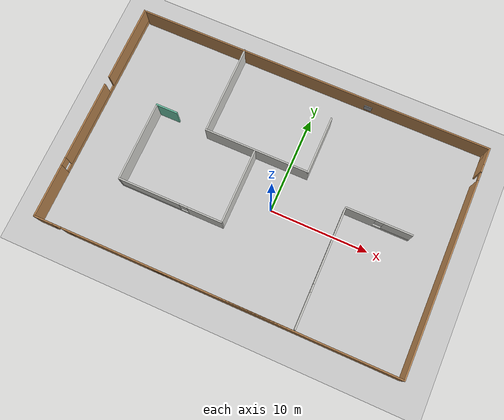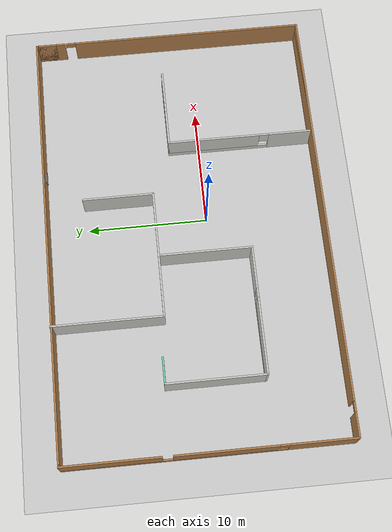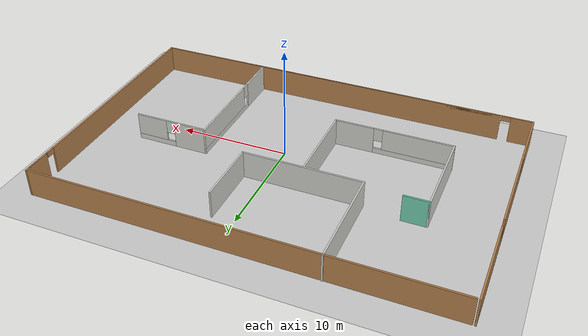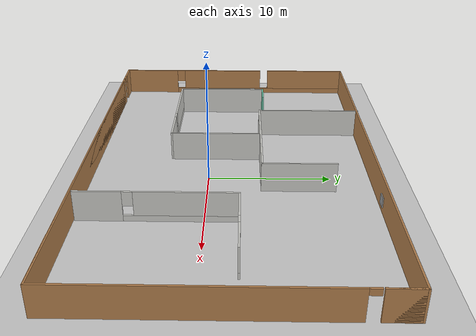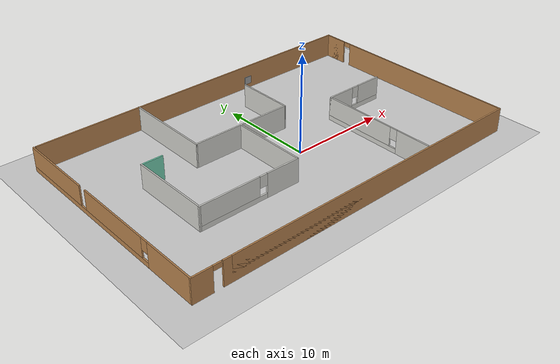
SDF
<sdf version="1.7">
 <world name="default">
  <light name="sun" type="directional">
   <cast_shadows>0</cast_shadows>
   <pose>0 0 10 0 -0 0</pose>
   <diffuse>0.8 0.8 0.8 1</diffuse>
   <specular>0.2 0.2 0.2 1</specular>
   <attenuation>
    <range>1000</range>
    <constant>0.9</constant>
    <linear>0.01</linear>
    <quadratic>0.001</quadratic>
   </attenuation>
   <direction>-0.5 0.1 -0.9</direction>
   <spot><inner_angle>0</inner_angle><outer_angle>0</outer_angle><falloff>0</falloff></spot>
  </light>
  <model name="ground_plane">
   <static>1</static>
   <link name="link">
    <collision name="collision">
     <geometry><plane><normal>0 0 1</normal><size>100 100</size></plane></geometry>
     <surface>
      <contact><collide_bitmask>65535</collide_bitmask></contact>
      <friction><ode><mu>100</mu><mu2>50</mu2></ode></friction>
     </surface>
    </collision>
    <visual name="visual">
     <cast_shadows>0</cast_shadows>
     <geometry><plane><normal>0 0 1</normal><size>100 100</size></plane></geometry>
     <material>
      <script><uri>file://media/materials/scripts/gazebo.material</uri><name>Gazebo/Grey</name></script>
     </material>
    </visual>
   </link>
  </model>
  <gravity>0 0 -9.8</gravity>
  <magnetic_field>6e-06 2.3e-05 -4.2e-05</magnetic_field>
  <atmosphere type="adiabatic"/>
  <physics type="ode">
   <max_step_size>0.001</max_step_size>
   <real_time_factor>1</real_time_factor>
   <real_time_update_rate>1000</real_time_update_rate>
  </physics>
  <scene><ambient>0.4 0.4 0.4 1</ambient><background>0.7 0.7 0.7 1</background><shadows>0</shadows></scene>
  <spherical_coordinates>
   <surface_model>EARTH_WGS84</surface_model>
   <latitude_deg>0</latitude_deg>
   <longitude_deg>0</longitude_deg>
   <elevation>0</elevation>
   <heading_deg>0</heading_deg>
  </spherical_coordinates>
  <model name="moon_workspace">
   <pose>-1.39969 1.86584 0 0 -0 0</pose>
   <link name="Wall_10">
    <collision name="Wall_10_Collision">
     <geometry><box><size>36.5 0.15 2.5</size></box></geometry>
     <pose>0 0 1.25 0 -0 0</pose>
    </collision>
    <visual name="Wall_10_Visual">
     <pose>0 0 1.25 0 -0 0</pose>
     <geometry><box><size>36.5 0.15 2.5</size></box></geometry>
     <material>
      <script><uri>file://media/materials/scripts/gazebo.material</uri><name>Gazebo/Wood</name></script>
      <ambient>1 1 1 1</ambient>
     </material>
     <meta><layer>0</layer></meta>
    </visual>
    <pose>0.125 11.52 0 0 -0 3.14159</pose>
   </link>
   <link name="Wall_12">
    <collision name="Wall_12_Collision">
     <geometry><box><size>9.25 0.15 2.5</size></box></geometry>
     <pose>0 0 1.25 0 -0 0</pose>
    </collision>
    <visual name="Wall_12_Visual">
     <pose>0 0 1.25 0 -0 0</pose>
     <geometry><box><size>9.25 0.15 2.5</size></box></geometry>
     <material>
      <script><uri>file://media/materials/scripts/gazebo.material</uri><name>Gazebo/CeilingTiled</name></script>
      <ambient>0.435294 0.796078 0.67451 1</ambient>
     </material>
     <meta><layer>0</layer></meta>
    </visual>
    <pose>-7.26644 7.02996 0 0 -0 -1.5708</pose>
   </link>
   <link name="Wall_13">
    <collision name="Wall_13_Collision">
     <geometry><box><size>10.75 0.15 2.5</size></box></geometry>
     <pose>0 0 1.25 0 -0 0</pose>
    </collision>
    <visual name="Wall_13_Visual">
     <pose>0 0 1.25 0 -0 0</pose>
     <geometry><box><size>10.75 0.15 2.5</size></box></geometry>
     <material>
      <script><uri>file://media/materials/scripts/gazebo.material</uri><name>Gazebo/CeilingTiled</name></script>
      <ambient>0.435294 0.796078 0.67451 1</ambient>
     </material>
     <meta><layer>0</layer></meta>
    </visual>
    <pose>-1.96644 2.47996 0 0 -0 0</pose>
   </link>
   <link name="Wall_14">
    <collision name="Wall_14_Collision">
     <geometry><box><size>6 0.15 2.5</size></box></geometry>
     <pose>0 0 1.25 0 -0 0</pose>
    </collision>
    <visual name="Wall_14_Visual">
     <pose>0 0 1.25 0 -0 0</pose>
     <geometry><box><size>6 0.15 2.5</size></box></geometry>
     <material>
      <script><uri>file://media/materials/scripts/gazebo.material</uri><name>Gazebo/CeilingTiled</name></script>
      <ambient>0.435294 0.796078 0.67451 1</ambient>
     </material>
     <meta><layer>0</layer></meta>
    </visual>
    <pose>3.33356 5.40496 0 0 -0 1.5708</pose>
   </link>
   <link name="Wall_16">
    <collision name="Wall_16_Collision">
     <geometry><box><size>7.75 0.15 2.5</size></box></geometry>
     <pose>0 0 1.25 0 -0 0</pose>
    </collision>
    <visual name="Wall_16_Visual">
     <pose>0 0 1.25 0 -0 0</pose>
     <geometry><box><size>7.75 0.15 2.5</size></box></geometry>
     <material>
      <script><uri>file://media/materials/scripts/gazebo.material</uri><name>Gazebo/CeilingTiled</name></script>
      <ambient>0.435294 0.796078 0.67451 1</ambient>
     </material>
     <meta><layer>0</layer></meta>
    </visual>
    <pose>-2.12729 -1.39711 0 0 -0 -1.5708</pose>
   </link>
   <link name="Wall_17">
    <pose>-7.42729 -5.19711 0 0 -0 3.14159</pose>
    <visual name="Wall_17_Visual_0">
     <pose>-3.57419 0 1.25 0 -0 0</pose>
     <geometry><box><size>3.60161 0.15 2.5</size></box></geometry>
     <material>
      <script><uri>file://media/materials/scripts/gazebo.material</uri><name>Gazebo/CeilingTiled</name></script>
      <ambient>0.435294 0.796078 0.67451 1</ambient>
     </material>
     <meta><layer>0</layer></meta>
    </visual>
    <collision name="Wall_17_Collision_0">
     <geometry><box><size>3.60161 0.15 2.5</size></box></geometry>
     <pose>-3.57419 0 1.25 0 -0 0</pose>
    </collision>
    <visual name="Wall_17_Visual_1">
     <pose>1.80081 0 0.25 0 -0 0</pose>
     <geometry><box><size>7.14839 0.15 0.5</size></box></geometry>
     <material>
      <script><uri>file://media/materials/scripts/gazebo.material</uri><name>Gazebo/CeilingTiled</name></script>
      <ambient>0.435294 0.796078 0.67451 1</ambient>
     </material>
     <meta><layer>0</layer></meta>
    </visual>
    <collision name="Wall_17_Collision_1">
     <geometry><box><size>7.14839 0.15 0.5</size></box></geometry>
     <pose>1.80081 0 0.25 0 -0 0</pose>
    </collision>
    <visual name="Wall_17_Visual_2">
     <pose>2.20081 0 1.5 0 -0 0</pose>
     <geometry><box><size>6.34839 0.15 2</size></box></geometry>
     <material>
      <script><uri>file://media/materials/scripts/gazebo.material</uri><name>Gazebo/CeilingTiled</name></script>
      <ambient>0.435294 0.796078 0.67451 1</ambient>
     </material>
     <meta><layer>0</layer></meta>
    </visual>
    <collision name="Wall_17_Collision_2">
     <geometry><box><size>6.34839 0.15 2</size></box></geometry>
     <pose>2.20081 0 1.5 0 -0 0</pose>
    </collision>
    <visual name="Wall_17_Visual_3">
     <pose>-1.37339 0 1.9 0 -0 0</pose>
     <geometry><box><size>0.8 0.15 1.2</size></box></geometry>
     <material>
      <script><uri>file://media/materials/scripts/gazebo.material</uri><name>Gazebo/CeilingTiled</name></script>
      <ambient>0.435294 0.796078 0.67451 1</ambient>
     </material>
     <meta><layer>0</layer></meta>
    </visual>
    <collision name="Wall_17_Collision_3">
     <geometry><box><size>0.8 0.15 1.2</size></box></geometry>
     <pose>-1.37339 0 1.9 0 -0 0</pose>
    </collision>
   </link>
   <link name="Wall_18">
    <collision name="Wall_18_Collision">
     <geometry><box><size>8.25 0.15 2.5</size></box></geometry>
     <pose>0 0 1.25 0 -0 0</pose>
    </collision>
    <visual name="Wall_18_Visual">
     <pose>0 0 1.25 0 -0 0</pose>
     <geometry><box><size>8.25 0.15 2.5</size></box></geometry>
     <material>
      <script><uri>file://media/materials/scripts/gazebo.material</uri><name>Gazebo/CeilingTiled</name></script>
      <ambient>0.435294 0.796078 0.67451 1</ambient>
     </material>
     <meta><layer>0</layer></meta>
    </visual>
    <pose>-12.7273 -1.14711 0 0 -0 1.5708</pose>
   </link>
   <link name="Wall_19">
    <collision name="Wall_19_Collision">
     <geometry><box><size>2.25 0.15 2.5</size></box></geometry>
     <pose>0 0 1.25 0 -0 0</pose>
    </collision>
    <visual name="Wall_19_Visual">
     <pose>0 0 1.25 0 -0 0</pose>
     <geometry><box><size>2.25 0.15 2.5</size></box></geometry>
     <material>
      <script><uri>file://media/materials/scripts/gazebo.material</uri><name>Gazebo/Grey</name></script>
      <ambient>0.435294 0.796078 0.67451 1</ambient>
     </material>
     <meta><layer>0</layer></meta>
    </visual>
    <pose>-11.6773 2.90289 0 0 -0 0</pose>
   </link>
   <link name="Wall_2">
    <pose>0 -11.58 0 0 -0 0</pose>
    <visual name="Wall_2_Visual_0">
     <pose>-17.3637 0 1.25 0 -0 0</pose>
     <geometry><box><size>2.02264 0.15 2.5</size></box></geometry>
     <material>
      <script><uri>file://media/materials/scripts/gazebo.material</uri><name>Gazebo/Wood</name></script>
      <ambient>1 1 1 1</ambient>
     </material>
     <meta><layer>0</layer></meta>
    </visual>
    <collision name="Wall_2_Collision_0">
     <geometry><box><size>2.02264 0.15 2.5</size></box></geometry>
     <pose>-17.3637 0 1.25 0 -0 0</pose>
    </collision>
    <visual name="Wall_2_Visual_1">
     <pose>1.46132 0 1.25 0 -0 0</pose>
     <geometry><box><size>33.8274 0.15 2.5</size></box></geometry>
     <material>
      <script><uri>file://media/materials/scripts/gazebo.material</uri><name>Gazebo/Wood</name></script>
      <ambient>1 1 1 1</ambient>
     </material>
     <meta><layer>0</layer></meta>
    </visual>
    <collision name="Wall_2_Collision_1">
     <geometry><box><size>33.8274 0.15 2.5</size></box></geometry>
     <pose>1.46132 0 1.25 0 -0 0</pose>
    </collision>
    <visual name="Wall_2_Visual_2">
     <pose>1.87791 0 1.25 0 -0 0</pose>
     <geometry><box><size>32.9942 0.15 2.5</size></box></geometry>
     <material>
      <script><uri>file://media/materials/scripts/gazebo.material</uri><name>Gazebo/Wood</name></script>
      <ambient>1 1 1 1</ambient>
     </material>
     <meta><layer>0</layer></meta>
    </visual>
    <collision name="Wall_2_Collision_2">
     <geometry><box><size>32.9942 0.15 2.5</size></box></geometry>
     <pose>1.87791 0 1.25 0 -0 0</pose>
    </collision>
    <visual name="Wall_2_Visual_3">
     <pose>-15.9358 0 2.25 0 -0 0</pose>
     <geometry><box><size>0.833176 0.15 0.5</size></box></geometry>
     <material>
      <script><uri>file://media/materials/scripts/gazebo.material</uri><name>Gazebo/Wood</name></script>
      <ambient>1 1 1 1</ambient>
     </material>
     <meta><layer>0</layer></meta>
    </visual>
    <collision name="Wall_2_Collision_3">
     <geometry><box><size>0.833176 0.15 0.5</size></box></geometry>
     <pose>-15.9358 0 2.25 0 -0 0</pose>
    </collision>
   </link>
   <link name="Wall_21">
    <pose>7.87572 -5.31271 0 0 -0 1.5708</pose>
    <visual name="Wall_21_Visual_0">
     <pose>-4.30974 0 1.25 0 -0 0</pose>
     <geometry><box><size>3.63052 0.15 2.5</size></box></geometry>
     <material>
      <script><uri>file://media/materials/scripts/gazebo.material</uri><name>Gazebo/CeilingTiled</name></script>
      <ambient>0.435294 0.796078 0.67451 1</ambient>
     </material>
     <meta><layer>0</layer></meta>
    </visual>
    <collision name="Wall_21_Collision_0">
     <geometry><box><size>3.63052 0.15 2.5</size></box></geometry>
     <pose>-4.30974 0 1.25 0 -0 0</pose>
    </collision>
    <visual name="Wall_21_Visual_1">
     <pose>1.81526 0 0.25 0 -0 0</pose>
     <geometry><box><size>8.61948 0.15 0.5</size></box></geometry>
     <material>
      <script><uri>file://media/materials/scripts/gazebo.material</uri><name>Gazebo/CeilingTiled</name></script>
      <ambient>0.435294 0.796078 0.67451 1</ambient>
     </material>
     <meta><layer>0</layer></meta>
    </visual>
    <collision name="Wall_21_Collision_1">
     <geometry><box><size>8.61948 0.15 0.5</size></box></geometry>
     <pose>1.81526 0 0.25 0 -0 0</pose>
    </collision>
    <visual name="Wall_21_Visual_2">
     <pose>2.21526 0 1.5 0 -0 0</pose>
     <geometry><box><size>7.81948 0.15 2</size></box></geometry>
     <material>
      <script><uri>file://media/materials/scripts/gazebo.material</uri><name>Gazebo/CeilingTiled</name></script>
      <ambient>0.435294 0.796078 0.67451 1</ambient>
     </material>
     <meta><layer>0</layer></meta>
    </visual>
    <collision name="Wall_21_Collision_2">
     <geometry><box><size>7.81948 0.15 2</size></box></geometry>
     <pose>2.21526 0 1.5 0 -0 0</pose>
    </collision>
    <visual name="Wall_21_Visual_3">
     <pose>-2.09448 0 1.9 0 -0 0</pose>
     <geometry><box><size>0.8 0.15 1.2</size></box></geometry>
     <material>
      <script><uri>file://media/materials/scripts/gazebo.material</uri><name>Gazebo/CeilingTiled</name></script>
      <ambient>0.435294 0.796078 0.67451 1</ambient>
     </material>
     <meta><layer>0</layer></meta>
    </visual>
    <collision name="Wall_21_Collision_3">
     <geometry><box><size>0.8 0.15 1.2</size></box></geometry>
     <pose>-2.09448 0 1.9 0 -0 0</pose>
    </collision>
   </link>
   <link name="Wall_22">
    <pose>11.1757 0.737285 0 0 -0 0</pose>
    <visual name="Wall_22_Visual_0">
     <pose>-1.84473 0 1.25 0 -0 0</pose>
     <geometry><box><size>3.06054 0.15 2.5</size></box></geometry>
     <material>
      <script><uri>file://media/materials/scripts/gazebo.material</uri><name>Gazebo/CeilingTiled</name></script>
      <ambient>0.435294 0.796078 0.67451 1</ambient>
     </material>
     <meta><layer>0</layer></meta>
    </visual>
    <collision name="Wall_22_Collision_0">
     <geometry><box><size>3.06054 0.15 2.5</size></box></geometry>
     <pose>-1.84473 0 1.25 0 -0 0</pose>
    </collision>
    <visual name="Wall_22_Visual_1">
     <pose>1.53027 0 0.25 0 -0 0</pose>
     <geometry><box><size>3.68946 0.15 0.5</size></box></geometry>
     <material>
      <script><uri>file://media/materials/scripts/gazebo.material</uri><name>Gazebo/CeilingTiled</name></script>
      <ambient>0.435294 0.796078 0.67451 1</ambient>
     </material>
     <meta><layer>0</layer></meta>
    </visual>
    <collision name="Wall_22_Collision_1">
     <geometry><box><size>3.68946 0.15 0.5</size></box></geometry>
     <pose>1.53027 0 0.25 0 -0 0</pose>
    </collision>
    <visual name="Wall_22_Visual_2">
     <pose>1.93027 0 1.5 0 -0 0</pose>
     <geometry><box><size>2.88945 0.15 2</size></box></geometry>
     <material>
      <script><uri>file://media/materials/scripts/gazebo.material</uri><name>Gazebo/CeilingTiled</name></script>
      <ambient>0.435294 0.796078 0.67451 1</ambient>
     </material>
     <meta><layer>0</layer></meta>
    </visual>
    <collision name="Wall_22_Collision_2">
     <geometry><box><size>2.88945 0.15 2</size></box></geometry>
     <pose>1.93027 0 1.5 0 -0 0</pose>
    </collision>
    <visual name="Wall_22_Visual_3">
     <pose>0.085545 0 1.9 0 -0 0</pose>
     <geometry><box><size>0.8 0.15 1.2</size></box></geometry>
     <material>
      <script><uri>file://media/materials/scripts/gazebo.material</uri><name>Gazebo/CeilingTiled</name></script>
      <ambient>0.435294 0.796078 0.67451 1</ambient>
     </material>
     <meta><layer>0</layer></meta>
    </visual>
    <collision name="Wall_22_Collision_3">
     <geometry><box><size>0.8 0.15 1.2</size></box></geometry>
     <pose>0.085545 0 1.9 0 -0 0</pose>
    </collision>
   </link>
   <link name="Wall_5">
    <pose>18.3 -0.029956 0 0 -0 1.5708</pose>
    <visual name="Wall_5_Visual_0">
     <pose>-1.73551 0 1.25 0 -0 0</pose>
     <geometry><box><size>19.779 0.15 2.5</size></box></geometry>
     <material>
      <script><uri>file://media/materials/scripts/gazebo.material</uri><name>Gazebo/Wood</name></script>
      <ambient>1 1 1 1</ambient>
     </material>
     <meta><layer>0</layer></meta>
    </visual>
    <collision name="Wall_5_Collision_0">
     <geometry><box><size>19.779 0.15 2.5</size></box></geometry>
     <pose>-1.73551 0 1.25 0 -0 0</pose>
    </collision>
    <visual name="Wall_5_Visual_1">
     <pose>10.3395 0 1.25 0 -0 0</pose>
     <geometry><box><size>2.57103 0.15 2.5</size></box></geometry>
     <material>
      <script><uri>file://media/materials/scripts/gazebo.material</uri><name>Gazebo/Wood</name></script>
      <ambient>1 1 1 1</ambient>
     </material>
     <meta><layer>0</layer></meta>
    </visual>
    <collision name="Wall_5_Collision_1">
     <geometry><box><size>2.57103 0.15 2.5</size></box></geometry>
     <pose>10.3395 0 1.25 0 -0 0</pose>
    </collision>
    <visual name="Wall_5_Visual_2">
     <pose>10.7385 0 1.25 0 -0 0</pose>
     <geometry><box><size>1.77302 0.15 2.5</size></box></geometry>
     <material>
      <script><uri>file://media/materials/scripts/gazebo.material</uri><name>Gazebo/Wood</name></script>
      <ambient>1 1 1 1</ambient>
     </material>
     <meta><layer>0</layer></meta>
    </visual>
    <collision name="Wall_5_Collision_2">
     <geometry><box><size>1.77302 0.15 2.5</size></box></geometry>
     <pose>10.7385 0 1.25 0 -0 0</pose>
    </collision>
    <visual name="Wall_5_Visual_3">
     <pose>8.55297 0 2.25 0 -0 0</pose>
     <geometry><box><size>0.798006 0.15 0.5</size></box></geometry>
     <material>
      <script><uri>file://media/materials/scripts/gazebo.material</uri><name>Gazebo/Wood</name></script>
      <ambient>1 1 1 1</ambient>
     </material>
     <meta><layer>0</layer></meta>
    </visual>
    <collision name="Wall_5_Collision_3">
     <geometry><box><size>0.798006 0.15 0.5</size></box></geometry>
     <pose>8.55297 0 2.25 0 -0 0</pose>
    </collision>
   </link>
   <link name="Wall_8">
    <pose>-18.3 -0.029956 0 0 -0 1.5708</pose>
    <visual name="Wall_8_Visual_0">
     <pose>-8.91407 0 1.25 0 -0 0</pose>
     <geometry><box><size>5.42186 0.15 2.5</size></box></geometry>
     <material>
      <script><uri>file://media/materials/scripts/gazebo.material</uri><name>Gazebo/Wood</name></script>
      <ambient>1 1 1 1</ambient>
     </material>
     <meta><layer>0</layer></meta>
    </visual>
    <collision name="Wall_8_Collision_0">
     <geometry><box><size>5.42186 0.15 2.5</size></box></geometry>
     <pose>-8.91407 0 1.25 0 -0 0</pose>
    </collision>
    <visual name="Wall_8_Visual_1">
     <pose>2.71093 0 0.25 0 -0 0</pose>
     <geometry><box><size>17.8281 0.15 0.5</size></box></geometry>
     <material>
      <script><uri>file://media/materials/scripts/gazebo.material</uri><name>Gazebo/Wood</name></script>
      <ambient>1 1 1 1</ambient>
     </material>
     <meta><layer>0</layer></meta>
    </visual>
    <collision name="Wall_8_Collision_1">
     <geometry><box><size>17.8281 0.15 0.5</size></box></geometry>
     <pose>2.71093 0 0.25 0 -0 0</pose>
    </collision>
    <visual name="Wall_8_Visual_2">
     <pose>-1.2907 0 1.5 0 -0 0</pose>
     <geometry><box><size>8.22487 0.15 2</size></box></geometry>
     <material>
      <script><uri>file://media/materials/scripts/gazebo.material</uri><name>Gazebo/Wood</name></script>
      <ambient>1 1 1 1</ambient>
     </material>
     <meta><layer>0</layer></meta>
    </visual>
    <collision name="Wall_8_Collision_2">
     <geometry><box><size>8.22487 0.15 2</size></box></geometry>
     <pose>-1.2907 0 1.5 0 -0 0</pose>
    </collision>
    <visual name="Wall_8_Visual_3">
     <pose>7.62337 0 1.5 0 -0 0</pose>
     <geometry><box><size>8.00327 0.15 2</size></box></geometry>
     <material>
      <script><uri>file://media/materials/scripts/gazebo.material</uri><name>Gazebo/Wood</name></script>
      <ambient>1 1 1 1</ambient>
     </material>
     <meta><layer>0</layer></meta>
    </visual>
    <collision name="Wall_8_Collision_3">
     <geometry><box><size>8.00327 0.15 2</size></box></geometry>
     <pose>7.62337 0 1.5 0 -0 0</pose>
    </collision>
    <visual name="Wall_8_Visual_4">
     <pose>-5.80314 0 1.9 0 -0 0</pose>
     <geometry><box><size>0.8 0.15 1.2</size></box></geometry>
     <material>
      <script><uri>file://media/materials/scripts/gazebo.material</uri><name>Gazebo/Wood</name></script>
      <ambient>1 1 1 1</ambient>
     </material>
     <meta><layer>0</layer></meta>
    </visual>
    <collision name="Wall_8_Collision_4">
     <geometry><box><size>0.8 0.15 1.2</size></box></geometry>
     <pose>-5.80314 0 1.9 0 -0 0</pose>
    </collision>
    <visual name="Wall_8_Visual_5">
     <pose>2.82173 0 1.9 0 -0 0</pose>
     <geometry><box><size>0 0.15 1.2</size></box></geometry>
     <material>
      <script><uri>file://media/materials/scripts/gazebo.material</uri><name>Gazebo/Wood</name></script>
      <ambient>1 1 1 1</ambient>
     </material>
     <meta><layer>0</layer></meta>
    </visual>
    <collision name="Wall_8_Collision_5">
     <geometry><box><size>0 0.15 1.2</size></box></geometry>
     <pose>2.82173 0 1.9 0 -0 0</pose>
    </collision>
   </link>
   <link name="Window_5">
    <collision name="Window_5_Collision">
     <geometry><box><size>0.8 0.17 0.8</size></box></geometry>
     <pose>0 0 0.4 0 -0 0</pose>
    </collision>
    <visual name="Window_5_Visual">
     <pose>0 0 0.4 0 -0 0</pose>
     <geometry><box><size>0.8 0.17 0.8</size></box></geometry>
     <material>
      <script><uri>file://media/materials/scripts/gazebo.material</uri><name>Gazebo/Grey</name></script>
     </material>
    </visual>
    <pose>6.15073 11.4423 0.5 0 -0 0</pose>
   </link>
   <static>1</static>
  </model>
 </world>
</sdf>
